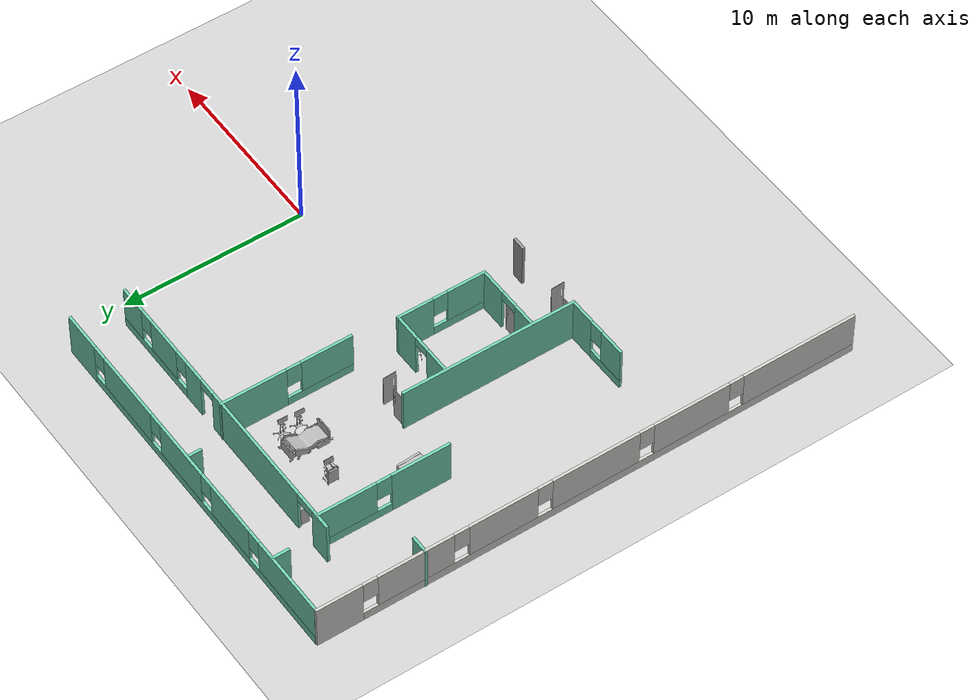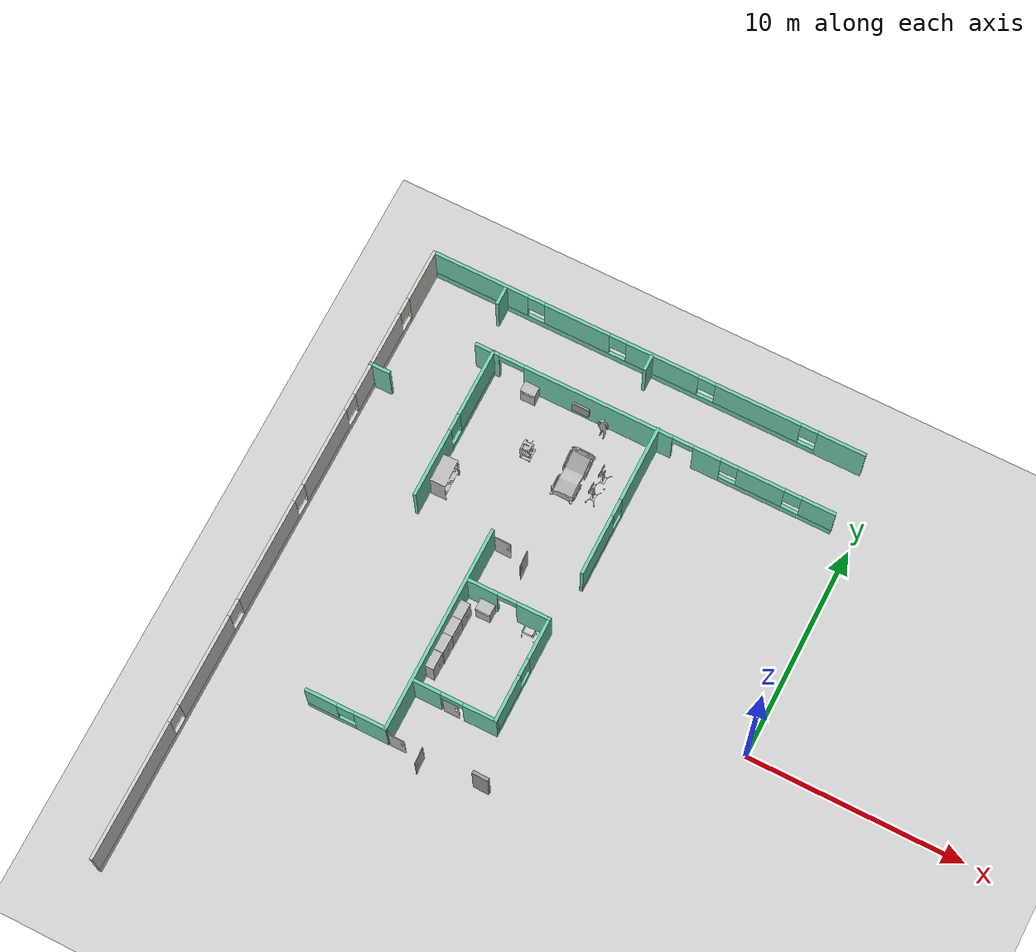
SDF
<sdf version="1.6">
 <world name="default">
  <model name="ground_plane">
   <static>1</static>
   <link name="link">
    <collision name="collision">
     <geometry><plane><normal>0 0 1</normal><size>100 100</size></plane></geometry>
     <surface><friction><ode><mu>100</mu><mu2>50</mu2></ode></friction></surface>
    </collision>
    <visual name="visual">
     <cast_shadows>0</cast_shadows>
     <geometry><plane><normal>0 0 1</normal><size>100 100</size></plane></geometry>
     <material>
      <script><uri>file://media/materials/scripts/gazebo.material</uri><name>Gazebo/Grey</name></script>
     </material>
    </visual>
   </link>
  </model>
  <model name="Hospital_empty">
   <pose>0.7078 0.61575 0 0 -0 0</pose>
   <link name="Wall_0">
    <pose>-22.2855 -2.07101 0 0 0 -1.57157</pose>
    <visual name="Wall_0_Visual_0">
     <pose>-13.6979 0 1.25 0 -0 0</pose>
     <geometry><box><size>2.48559 0.15 2.5</size></box></geometry>
     <material>
      <script><uri>file://media/materials/scripts/gazebo.material</uri><name>Gazebo/CeilingTiled</name></script>
      <ambient>0.435294 0.796078 0.67451 1</ambient>
     </material>
    </visual>
    <collision name="Wall_0_Collision_0">
     <geometry><box><size>2.48559 0.15 2.5</size></box></geometry>
     <pose>-13.6979 0 1.25 0 -0 0</pose>
    </collision>
    <visual name="Wall_0_Visual_1">
     <pose>1.2428 0 0.25 0 -0 0</pose>
     <geometry><box><size>27.3959 0.15 0.5</size></box></geometry>
     <material>
      <script><uri>file://media/materials/scripts/gazebo.material</uri><name>Gazebo/CeilingTiled</name></script>
      <ambient>0.435294 0.796078 0.67451 1</ambient>
     </material>
    </visual>
    <collision name="Wall_0_Collision_1">
     <geometry><box><size>27.3959 0.15 0.5</size></box></geometry>
     <pose>1.2428 0 0.25 0 -0 0</pose>
    </collision>
    <visual name="Wall_0_Visual_2">
     <pose>-9.59967 0 1.5 0 -0 0</pose>
     <geometry><box><size>4.11095 0.15 2</size></box></geometry>
     <material>
      <script><uri>file://media/materials/scripts/gazebo.material</uri><name>Gazebo/CeilingTiled</name></script>
      <ambient>0.435294 0.796078 0.67451 1</ambient>
     </material>
    </visual>
    <collision name="Wall_0_Collision_2">
     <geometry><box><size>4.11095 0.15 2</size></box></geometry>
     <pose>-9.59967 0 1.5 0 -0 0</pose>
    </collision>
    <visual name="Wall_0_Visual_3">
     <pose>-4.86411 0 1.5 0 -0 0</pose>
     <geometry><box><size>3.76016 0.15 2</size></box></geometry>
     <material>
      <script><uri>file://media/materials/scripts/gazebo.material</uri><name>Gazebo/CeilingTiled</name></script>
      <ambient>0.435294 0.796078 0.67451 1</ambient>
     </material>
    </visual>
    <collision name="Wall_0_Collision_3">
     <geometry><box><size>3.76016 0.15 2</size></box></geometry>
     <pose>-4.86411 0 1.5 0 -0 0</pose>
    </collision>
    <visual name="Wall_0_Visual_4">
     <pose>0.23681 0 1.5 0 -0 0</pose>
     <geometry><box><size>4.84168 0.15 2</size></box></geometry>
     <material>
      <script><uri>file://media/materials/scripts/gazebo.material</uri><name>Gazebo/CeilingTiled</name></script>
      <ambient>0.435294 0.796078 0.67451 1</ambient>
     </material>
    </visual>
    <collision name="Wall_0_Collision_4">
     <geometry><box><size>4.84168 0.15 2</size></box></geometry>
     <pose>0.23681 0 1.5 0 -0 0</pose>
    </collision>
    <visual name="Wall_0_Visual_5">
     <pose>5.5901 0 1.5 0 -0 0</pose>
     <geometry><box><size>4.2649 0.15 2</size></box></geometry>
     <material>
      <script><uri>file://media/materials/scripts/gazebo.material</uri><name>Gazebo/CeilingTiled</name></script>
      <ambient>0.435294 0.796078 0.67451 1</ambient>
     </material>
    </visual>
    <collision name="Wall_0_Collision_5">
     <geometry><box><size>4.2649 0.15 2</size></box></geometry>
     <pose>5.5901 0 1.5 0 -0 0</pose>
    </collision>
    <visual name="Wall_0_Visual_6">
     <pose>11.7316 0 1.5 0 -0 0</pose>
     <geometry><box><size>6.41818 0.15 2</size></box></geometry>
     <material>
      <script><uri>file://media/materials/scripts/gazebo.material</uri><name>Gazebo/CeilingTiled</name></script>
      <ambient>0.435294 0.796078 0.67451 1</ambient>
     </material>
    </visual>
    <collision name="Wall_0_Collision_6">
     <geometry><box><size>6.41818 0.15 2</size></box></geometry>
     <pose>11.7316 0 1.5 0 -0 0</pose>
    </collision>
    <visual name="Wall_0_Visual_7">
     <pose>-12.0551 0 1.9 0 -0 0</pose>
     <geometry><box><size>0.8 0.15 1.2</size></box></geometry>
     <material>
      <script><uri>file://media/materials/scripts/gazebo.material</uri><name>Gazebo/CeilingTiled</name></script>
      <ambient>0.435294 0.796078 0.67451 1</ambient>
     </material>
    </visual>
    <collision name="Wall_0_Collision_7">
     <geometry><box><size>0.8 0.15 1.2</size></box></geometry>
     <pose>-12.0551 0 1.9 0 -0 0</pose>
    </collision>
    <visual name="Wall_0_Visual_8">
     <pose>-7.14419 0 1.9 0 -0 0</pose>
     <geometry><box><size>0.8 0.15 1.2</size></box></geometry>
     <material>
      <script><uri>file://media/materials/scripts/gazebo.material</uri><name>Gazebo/CeilingTiled</name></script>
      <ambient>0.435294 0.796078 0.67451 1</ambient>
     </material>
    </visual>
    <collision name="Wall_0_Collision_8">
     <geometry><box><size>0.8 0.15 1.2</size></box></geometry>
     <pose>-7.14419 0 1.9 0 -0 0</pose>
    </collision>
    <visual name="Wall_0_Visual_9">
     <pose>-2.58403 0 1.9 0 -0 0</pose>
     <geometry><box><size>0.8 0.15 1.2</size></box></geometry>
     <material>
      <script><uri>file://media/materials/scripts/gazebo.material</uri><name>Gazebo/CeilingTiled</name></script>
      <ambient>0.435294 0.796078 0.67451 1</ambient>
     </material>
    </visual>
    <collision name="Wall_0_Collision_9">
     <geometry><box><size>0.8 0.15 1.2</size></box></geometry>
     <pose>-2.58403 0 1.9 0 -0 0</pose>
    </collision>
    <visual name="Wall_0_Visual_10">
     <pose>3.05765 0 1.9 0 -0 0</pose>
     <geometry><box><size>0.8 0.15 1.2</size></box></geometry>
     <material>
      <script><uri>file://media/materials/scripts/gazebo.material</uri><name>Gazebo/CeilingTiled</name></script>
      <ambient>0.435294 0.796078 0.67451 1</ambient>
     </material>
    </visual>
    <collision name="Wall_0_Collision_10">
     <geometry><box><size>0.8 0.15 1.2</size></box></geometry>
     <pose>3.05765 0 1.9 0 -0 0</pose>
    </collision>
    <visual name="Wall_0_Visual_11">
     <pose>8.12255 0 1.9 0 -0 0</pose>
     <geometry><box><size>0.8 0.15 1.2</size></box></geometry>
     <material>
      <script><uri>file://media/materials/scripts/gazebo.material</uri><name>Gazebo/CeilingTiled</name></script>
      <ambient>0.435294 0.796078 0.67451 1</ambient>
     </material>
    </visual>
    <collision name="Wall_0_Collision_11">
     <geometry><box><size>0.8 0.15 1.2</size></box></geometry>
     <pose>8.12255 0 1.9 0 -0 0</pose>
    </collision>
   </link>
   <link name="Wall_11">
    <collision name="Wall_11_Collision">
     <geometry><box><size>0.75 0.15 2.5</size></box></geometry>
     <pose>0 0 1.25 0 -0 0</pose>
    </collision>
    <visual name="Wall_11_Visual">
     <pose>0 0 1.25 0 -0 0</pose>
     <geometry><box><size>0.75 0.15 2.5</size></box></geometry>
     <material>
      <script><uri>file://media/materials/scripts/gazebo.material</uri><name>Gazebo/Grey</name></script>
      <ambient>0.435294 0.796078 0.67451 1</ambient>
     </material>
    </visual>
    <pose>-11.779 12.417 0 0 0 -1.5708</pose>
   </link>
   <link name="Wall_15">
    <pose>-10.243 9.85799 0 0 -0 0</pose>
    <visual name="Wall_15_Visual_0">
     <pose>-7.92165 0 1.25 0 -0 0</pose>
     <geometry><box><size>1.1567 0.15 2.5</size></box></geometry>
     <material>
      <script><uri>file://media/materials/scripts/gazebo.material</uri><name>Gazebo/Grey</name></script>
      <ambient>0.435294 0.796078 0.67451 1</ambient>
     </material>
    </visual>
    <collision name="Wall_15_Collision_0">
     <geometry><box><size>1.1567 0.15 2.5</size></box></geometry>
     <pose>-7.92165 0 1.25 0 -0 0</pose>
    </collision>
    <visual name="Wall_15_Visual_1">
     <pose>-2.63446 0 1.25 0 -0 0</pose>
     <geometry><box><size>7.0372 0.15 2.5</size></box></geometry>
     <material>
      <script><uri>file://media/materials/scripts/gazebo.material</uri><name>Gazebo/Grey</name></script>
      <ambient>0.435294 0.796078 0.67451 1</ambient>
     </material>
    </visual>
    <collision name="Wall_15_Collision_1">
     <geometry><box><size>7.0372 0.15 2.5</size></box></geometry>
     <pose>-2.63446 0 1.25 0 -0 0</pose>
    </collision>
    <visual name="Wall_15_Visual_2">
     <pose>2.50875 0 1.25 0 -0 0</pose>
     <geometry><box><size>1.28668 0.15 2.5</size></box></geometry>
     <material>
      <script><uri>file://media/materials/scripts/gazebo.material</uri><name>Gazebo/Grey</name></script>
      <ambient>0.435294 0.796078 0.67451 1</ambient>
     </material>
    </visual>
    <collision name="Wall_15_Collision_2">
     <geometry><box><size>1.28668 0.15 2.5</size></box></geometry>
     <pose>2.50875 0 1.25 0 -0 0</pose>
    </collision>
    <visual name="Wall_15_Visual_3">
     <pose>5.82605 0 0.25 0 -0 0</pose>
     <geometry><box><size>5.34791 0.15 0.5</size></box></geometry>
     <material>
      <script><uri>file://media/materials/scripts/gazebo.material</uri><name>Gazebo/Grey</name></script>
      <ambient>0.435294 0.796078 0.67451 1</ambient>
     </material>
    </visual>
    <collision name="Wall_15_Collision_3">
     <geometry><box><size>5.34791 0.15 0.5</size></box></geometry>
     <pose>5.82605 0 0.25 0 -0 0</pose>
    </collision>
    <visual name="Wall_15_Visual_4">
     <pose>5.03895 0 1.5 0 -0 0</pose>
     <geometry><box><size>2.17371 0.15 2</size></box></geometry>
     <material>
      <script><uri>file://media/materials/scripts/gazebo.material</uri><name>Gazebo/Grey</name></script>
      <ambient>0.435294 0.796078 0.67451 1</ambient>
     </material>
    </visual>
    <collision name="Wall_15_Collision_4">
     <geometry><box><size>2.17371 0.15 2</size></box></geometry>
     <pose>5.03895 0 1.5 0 -0 0</pose>
    </collision>
    <visual name="Wall_15_Visual_5">
     <pose>7.7129 0 1.5 0 -0 0</pose>
     <geometry><box><size>1.5742 0.15 2</size></box></geometry>
     <material>
      <script><uri>file://media/materials/scripts/gazebo.material</uri><name>Gazebo/Grey</name></script>
      <ambient>0.435294 0.796078 0.67451 1</ambient>
     </material>
    </visual>
    <collision name="Wall_15_Collision_5">
     <geometry><box><size>1.5742 0.15 2</size></box></geometry>
     <pose>7.7129 0 1.5 0 -0 0</pose>
    </collision>
    <visual name="Wall_15_Visual_6">
     <pose>3.55209 0 1.9 0 -0 0</pose>
     <geometry><box><size>0.8 0.15 1.2</size></box></geometry>
     <material>
      <script><uri>file://media/materials/scripts/gazebo.material</uri><name>Gazebo/Grey</name></script>
      <ambient>0.435294 0.796078 0.67451 1</ambient>
     </material>
    </visual>
    <collision name="Wall_15_Collision_6">
     <geometry><box><size>0.8 0.15 1.2</size></box></geometry>
     <pose>3.55209 0 1.9 0 -0 0</pose>
    </collision>
    <visual name="Wall_15_Visual_7">
     <pose>6.5258 0 1.9 0 -0 0</pose>
     <geometry><box><size>0.8 0.15 1.2</size></box></geometry>
     <material>
      <script><uri>file://media/materials/scripts/gazebo.material</uri><name>Gazebo/Grey</name></script>
      <ambient>0.435294 0.796078 0.67451 1</ambient>
     </material>
    </visual>
    <collision name="Wall_15_Collision_7">
     <geometry><box><size>0.8 0.15 1.2</size></box></geometry>
     <pose>6.5258 0 1.9 0 -0 0</pose>
    </collision>
    <visual name="Wall_15_Visual_8">
     <pose>-6.74818 0 2.25 0 -0 0</pose>
     <geometry><box><size>1.19024 0.15 0.5</size></box></geometry>
     <material>
      <script><uri>file://media/materials/scripts/gazebo.material</uri><name>Gazebo/Grey</name></script>
      <ambient>0.435294 0.796078 0.67451 1</ambient>
     </material>
    </visual>
    <collision name="Wall_15_Collision_8">
     <geometry><box><size>1.19024 0.15 0.5</size></box></geometry>
     <pose>-6.74818 0 2.25 0 -0 0</pose>
    </collision>
    <visual name="Wall_15_Visual_9">
     <pose>1.37478 0 2.25 0 -0 0</pose>
     <geometry><box><size>0.981268 0.15 0.5</size></box></geometry>
     <material>
      <script><uri>file://media/materials/scripts/gazebo.material</uri><name>Gazebo/Grey</name></script>
      <ambient>0.435294 0.796078 0.67451 1</ambient>
     </material>
    </visual>
    <collision name="Wall_15_Collision_9">
     <geometry><box><size>0.981268 0.15 0.5</size></box></geometry>
     <pose>1.37478 0 2.25 0 -0 0</pose>
    </collision>
   </link>
   <link name="Wall_19">
    <pose>-17.897 6.26299 0 0 -0 1.5708</pose>
    <visual name="Wall_19_Visual_0">
     <pose>-2.00631 0 1.25 0 -0 0</pose>
     <geometry><box><size>3.23738 0.15 2.5</size></box></geometry>
     <material>
      <script><uri>file://media/materials/scripts/gazebo.material</uri><name>Gazebo/Grey</name></script>
      <ambient>0.435294 0.796078 0.67451 1</ambient>
     </material>
    </visual>
    <collision name="Wall_19_Collision_0">
     <geometry><box><size>3.23738 0.15 2.5</size></box></geometry>
     <pose>-2.00631 0 1.25 0 -0 0</pose>
    </collision>
    <visual name="Wall_19_Visual_1">
     <pose>1.61869 0 0.25 0 -0 0</pose>
     <geometry><box><size>4.01262 0.15 0.5</size></box></geometry>
     <material>
      <script><uri>file://media/materials/scripts/gazebo.material</uri><name>Gazebo/Grey</name></script>
      <ambient>0.435294 0.796078 0.67451 1</ambient>
     </material>
    </visual>
    <collision name="Wall_19_Collision_1">
     <geometry><box><size>4.01262 0.15 0.5</size></box></geometry>
     <pose>1.61869 0 0.25 0 -0 0</pose>
    </collision>
    <visual name="Wall_19_Visual_2">
     <pose>2.01869 0 1.5 0 -0 0</pose>
     <geometry><box><size>3.21262 0.15 2</size></box></geometry>
     <material>
      <script><uri>file://media/materials/scripts/gazebo.material</uri><name>Gazebo/Grey</name></script>
      <ambient>0.435294 0.796078 0.67451 1</ambient>
     </material>
    </visual>
    <collision name="Wall_19_Collision_2">
     <geometry><box><size>3.21262 0.15 2</size></box></geometry>
     <pose>2.01869 0 1.5 0 -0 0</pose>
    </collision>
    <visual name="Wall_19_Visual_3">
     <pose>0.012383 0 1.9 0 -0 0</pose>
     <geometry><box><size>0.8 0.15 1.2</size></box></geometry>
     <material>
      <script><uri>file://media/materials/scripts/gazebo.material</uri><name>Gazebo/Grey</name></script>
      <ambient>0.435294 0.796078 0.67451 1</ambient>
     </material>
    </visual>
    <collision name="Wall_19_Collision_3">
     <geometry><box><size>0.8 0.15 1.2</size></box></geometry>
     <pose>0.012383 0 1.9 0 -0 0</pose>
    </collision>
   </link>
   <link name="Wall_21">
    <pose>-10.075 6.33799 0 0 0 -1.5708</pose>
    <visual name="Wall_21_Visual_0">
     <pose>-1.82469 0 1.25 0 -0 0</pose>
     <geometry><box><size>3.60062 0.15 2.5</size></box></geometry>
     <material>
      <script><uri>file://media/materials/scripts/gazebo.material</uri><name>Gazebo/Grey</name></script>
      <ambient>0.435294 0.796078 0.67451 1</ambient>
     </material>
    </visual>
    <collision name="Wall_21_Collision_0">
     <geometry><box><size>3.60062 0.15 2.5</size></box></geometry>
     <pose>-1.82469 0 1.25 0 -0 0</pose>
    </collision>
    <visual name="Wall_21_Visual_1">
     <pose>1.80031 0 0.25 0 -0 0</pose>
     <geometry><box><size>3.64938 0.15 0.5</size></box></geometry>
     <material>
      <script><uri>file://media/materials/scripts/gazebo.material</uri><name>Gazebo/Grey</name></script>
      <ambient>0.435294 0.796078 0.67451 1</ambient>
     </material>
    </visual>
    <collision name="Wall_21_Collision_1">
     <geometry><box><size>3.64938 0.15 0.5</size></box></geometry>
     <pose>1.80031 0 0.25 0 -0 0</pose>
    </collision>
    <visual name="Wall_21_Visual_2">
     <pose>2.20031 0 1.5 0 -0 0</pose>
     <geometry><box><size>2.84938 0.15 2</size></box></geometry>
     <material>
      <script><uri>file://media/materials/scripts/gazebo.material</uri><name>Gazebo/Grey</name></script>
      <ambient>0.435294 0.796078 0.67451 1</ambient>
     </material>
    </visual>
    <collision name="Wall_21_Collision_2">
     <geometry><box><size>2.84938 0.15 2</size></box></geometry>
     <pose>2.20031 0 1.5 0 -0 0</pose>
    </collision>
    <visual name="Wall_21_Visual_3">
     <pose>0.375624 0 1.9 0 -0 0</pose>
     <geometry><box><size>0.8 0.15 1.2</size></box></geometry>
     <material>
      <script><uri>file://media/materials/scripts/gazebo.material</uri><name>Gazebo/Grey</name></script>
      <ambient>0.435294 0.796078 0.67451 1</ambient>
     </material>
    </visual>
    <collision name="Wall_21_Collision_3">
     <geometry><box><size>0.8 0.15 1.2</size></box></geometry>
     <pose>0.375624 0 1.9 0 -0 0</pose>
    </collision>
   </link>
   <link name="Wall_25">
    <collision name="Wall_25_Collision">
     <geometry><box><size>9.67974 0.15 2.5</size></box></geometry>
     <pose>0 0 1.25 0 -0 0</pose>
    </collision>
    <visual name="Wall_25_Visual">
     <pose>0 0 1.25 0 -0 0</pose>
     <geometry><box><size>9.67974 0.15 2.5</size></box></geometry>
     <material>
      <script><uri>file://media/materials/scripts/gazebo.material</uri><name>Gazebo/Grey</name></script>
      <ambient>0.435294 0.796078 0.67451 1</ambient>
     </material>
    </visual>
    <pose>-14.252 -2.06201 0 0 0 -1.57038</pose>
   </link>
   <link name="Wall_26">
    <pose>-16.0778 -6.83628 0 0 0 -3.13652</pose>
    <visual name="Wall_26_Visual_0">
     <pose>-1.13589 0 1.25 0 -0 0</pose>
     <geometry><box><size>1.53388 0.15 2.5</size></box></geometry>
     <material>
      <script><uri>file://media/materials/scripts/gazebo.material</uri><name>Gazebo/Grey</name></script>
      <ambient>0.435294 0.796078 0.67451 1</ambient>
     </material>
    </visual>
    <collision name="Wall_26_Collision_0">
     <geometry><box><size>1.53388 0.15 2.5</size></box></geometry>
     <pose>-1.13589 0 1.25 0 -0 0</pose>
    </collision>
    <visual name="Wall_26_Visual_1">
     <pose>0.766942 0 0.25 0 -0 0</pose>
     <geometry><box><size>2.27178 0.15 0.5</size></box></geometry>
     <material>
      <script><uri>file://media/materials/scripts/gazebo.material</uri><name>Gazebo/Grey</name></script>
      <ambient>0.435294 0.796078 0.67451 1</ambient>
     </material>
    </visual>
    <collision name="Wall_26_Collision_1">
     <geometry><box><size>2.27178 0.15 0.5</size></box></geometry>
     <pose>0.766942 0 0.25 0 -0 0</pose>
    </collision>
    <visual name="Wall_26_Visual_2">
     <pose>1.16694 0 1.5 0 -0 0</pose>
     <geometry><box><size>1.47178 0.15 2</size></box></geometry>
     <material>
      <script><uri>file://media/materials/scripts/gazebo.material</uri><name>Gazebo/Grey</name></script>
      <ambient>0.435294 0.796078 0.67451 1</ambient>
     </material>
    </visual>
    <collision name="Wall_26_Collision_2">
     <geometry><box><size>1.47178 0.15 2</size></box></geometry>
     <pose>1.16694 0 1.5 0 -0 0</pose>
    </collision>
    <visual name="Wall_26_Visual_3">
     <pose>0.031054 0 1.9 0 -0 0</pose>
     <geometry><box><size>0.8 0.15 1.2</size></box></geometry>
     <material>
      <script><uri>file://media/materials/scripts/gazebo.material</uri><name>Gazebo/Grey</name></script>
      <ambient>0.435294 0.796078 0.67451 1</ambient>
     </material>
    </visual>
    <collision name="Wall_26_Collision_3">
     <geometry><box><size>0.8 0.15 1.2</size></box></geometry>
     <pose>0.031054 0 1.9 0 -0 0</pose>
    </collision>
   </link>
   <link name="Wall_34">
    <collision name="Wall_34_Collision">
     <geometry><box><size>0.75 0.15 2.5</size></box></geometry>
     <pose>0 0 1.25 0 -0 0</pose>
    </collision>
    <visual name="Wall_34_Visual">
     <pose>0 0 1.25 0 -0 0</pose>
     <geometry><box><size>0.75 0.15 2.5</size></box></geometry>
     <material>
      <script><uri>file://media/materials/scripts/gazebo.material</uri><name>Gazebo/Grey</name></script>
      <ambient>1 1 1 1</ambient>
     </material>
    </visual>
    <pose>-9.874 -6.83101 0 0 0 -0.033321</pose>
   </link>
   <link name="Wall_5">
    <pose>-11.972 12.813 0 0 -0 3.14159</pose>
    <visual name="Wall_5_Visual_0">
     <pose>-9.13138 0 1.25 0 -0 0</pose>
     <geometry><box><size>2.23723 0.15 2.5</size></box></geometry>
     <material>
      <script><uri>file://media/materials/scripts/gazebo.material</uri><name>Gazebo/Grey</name></script>
      <ambient>0.435294 0.796078 0.67451 1</ambient>
     </material>
    </visual>
    <collision name="Wall_5_Collision_0">
     <geometry><box><size>2.23723 0.15 2.5</size></box></geometry>
     <pose>-9.13138 0 1.25 0 -0 0</pose>
    </collision>
    <visual name="Wall_5_Visual_1">
     <pose>1.11862 0 0.25 0 -0 0</pose>
     <geometry><box><size>18.2628 0.15 0.5</size></box></geometry>
     <material>
      <script><uri>file://media/materials/scripts/gazebo.material</uri><name>Gazebo/Grey</name></script>
      <ambient>0.435294 0.796078 0.67451 1</ambient>
     </material>
    </visual>
    <collision name="Wall_5_Collision_1">
     <geometry><box><size>18.2628 0.15 0.5</size></box></geometry>
     <pose>1.11862 0 0.25 0 -0 0</pose>
    </collision>
    <visual name="Wall_5_Visual_2">
     <pose>-5.20625 0 1.5 0 -0 0</pose>
     <geometry><box><size>4.01304 0.15 2</size></box></geometry>
     <material>
      <script><uri>file://media/materials/scripts/gazebo.material</uri><name>Gazebo/Grey</name></script>
      <ambient>0.435294 0.796078 0.67451 1</ambient>
     </material>
    </visual>
    <collision name="Wall_5_Collision_2">
     <geometry><box><size>4.01304 0.15 2</size></box></geometry>
     <pose>-5.20625 0 1.5 0 -0 0</pose>
    </collision>
    <visual name="Wall_5_Visual_3">
     <pose>-0.68668 0 1.5 0 -0 0</pose>
     <geometry><box><size>3.42609 0.15 2</size></box></geometry>
     <material>
      <script><uri>file://media/materials/scripts/gazebo.material</uri><name>Gazebo/Grey</name></script>
      <ambient>0.435294 0.796078 0.67451 1</ambient>
     </material>
    </visual>
    <collision name="Wall_5_Collision_3">
     <geometry><box><size>3.42609 0.15 2</size></box></geometry>
     <pose>-0.68668 0 1.5 0 -0 0</pose>
    </collision>
    <visual name="Wall_5_Visual_4">
     <pose>3.38289 0 1.5 0 -0 0</pose>
     <geometry><box><size>3.11304 0.15 2</size></box></geometry>
     <material>
      <script><uri>file://media/materials/scripts/gazebo.material</uri><name>Gazebo/Grey</name></script>
      <ambient>0.435294 0.796078 0.67451 1</ambient>
     </material>
    </visual>
    <collision name="Wall_5_Collision_4">
     <geometry><box><size>3.11304 0.15 2</size></box></geometry>
     <pose>3.38289 0 1.5 0 -0 0</pose>
    </collision>
    <visual name="Wall_5_Visual_5">
     <pose>7.9947 0 1.5 0 -0 0</pose>
     <geometry><box><size>4.51059 0.15 2</size></box></geometry>
     <material>
      <script><uri>file://media/materials/scripts/gazebo.material</uri><name>Gazebo/Grey</name></script>
      <ambient>0.435294 0.796078 0.67451 1</ambient>
     </material>
    </visual>
    <collision name="Wall_5_Collision_5">
     <geometry><box><size>4.51059 0.15 2</size></box></geometry>
     <pose>7.9947 0 1.5 0 -0 0</pose>
    </collision>
    <visual name="Wall_5_Visual_6">
     <pose>-7.61277 0 1.9 0 -0 0</pose>
     <geometry><box><size>0.8 0.15 1.2</size></box></geometry>
     <material>
      <script><uri>file://media/materials/scripts/gazebo.material</uri><name>Gazebo/Grey</name></script>
      <ambient>0.435294 0.796078 0.67451 1</ambient>
     </material>
    </visual>
    <collision name="Wall_5_Collision_6">
     <geometry><box><size>0.8 0.15 1.2</size></box></geometry>
     <pose>-7.61277 0 1.9 0 -0 0</pose>
    </collision>
    <visual name="Wall_5_Visual_7">
     <pose>-2.79972 0 1.9 0 -0 0</pose>
     <geometry><box><size>0.8 0.15 1.2</size></box></geometry>
     <material>
      <script><uri>file://media/materials/scripts/gazebo.material</uri><name>Gazebo/Grey</name></script>
      <ambient>0.435294 0.796078 0.67451 1</ambient>
     </material>
    </visual>
    <collision name="Wall_5_Collision_7">
     <geometry><box><size>0.8 0.15 1.2</size></box></geometry>
     <pose>-2.79972 0 1.9 0 -0 0</pose>
    </collision>
    <visual name="Wall_5_Visual_8">
     <pose>1.42636 0 1.9 0 -0 0</pose>
     <geometry><box><size>0.8 0.15 1.2</size></box></geometry>
     <material>
      <script><uri>file://media/materials/scripts/gazebo.material</uri><name>Gazebo/Grey</name></script>
      <ambient>0.435294 0.796078 0.67451 1</ambient>
     </material>
    </visual>
    <collision name="Wall_5_Collision_8">
     <geometry><box><size>0.8 0.15 1.2</size></box></geometry>
     <pose>1.42636 0 1.9 0 -0 0</pose>
    </collision>
    <visual name="Wall_5_Visual_9">
     <pose>5.33941 0 1.9 0 -0 0</pose>
     <geometry><box><size>0.8 0.15 1.2</size></box></geometry>
     <material>
      <script><uri>file://media/materials/scripts/gazebo.material</uri><name>Gazebo/Grey</name></script>
      <ambient>0.435294 0.796078 0.67451 1</ambient>
     </material>
    </visual>
    <collision name="Wall_5_Collision_9">
     <geometry><box><size>0.8 0.15 1.2</size></box></geometry>
     <pose>5.33941 0 1.9 0 -0 0</pose>
    </collision>
   </link>
   <link name="Wall_7">
    <collision name="Wall_7_Collision">
     <geometry><box><size>1 0.15 2.5</size></box></geometry>
     <pose>0 0 1.25 0 -0 0</pose>
    </collision>
    <visual name="Wall_7_Visual">
     <pose>0 0 1.25 0 -0 0</pose>
     <geometry><box><size>1 0.15 2.5</size></box></geometry>
     <material>
      <script><uri>file://media/materials/scripts/gazebo.material</uri><name>Gazebo/Grey</name></script>
      <ambient>0.435294 0.796078 0.67451 1</ambient>
     </material>
    </visual>
    <pose>-21.878 7.02899 0 0 -0 0</pose>
   </link>
   <link name="Wall_82">
    <pose>-12.316 0.362988 0 0 -0 0</pose>
    <visual name="Wall_82_Visual_0">
     <pose>-1.23906 0 1.25 0 -0 0</pose>
     <geometry><box><size>1.52188 0.15 2.5</size></box></geometry>
     <material>
      <script><uri>file://media/materials/scripts/gazebo.material</uri><name>Gazebo/Grey</name></script>
      <ambient>0.435294 0.796078 0.67451 1</ambient>
     </material>
    </visual>
    <collision name="Wall_82_Collision_0">
     <geometry><box><size>1.52188 0.15 2.5</size></box></geometry>
     <pose>-1.23906 0 1.25 0 -0 0</pose>
    </collision>
    <visual name="Wall_82_Visual_1">
     <pose>1.21094 0 1.25 0 -0 0</pose>
     <geometry><box><size>1.57812 0.15 2.5</size></box></geometry>
     <material>
      <script><uri>file://media/materials/scripts/gazebo.material</uri><name>Gazebo/Grey</name></script>
      <ambient>0.435294 0.796078 0.67451 1</ambient>
     </material>
    </visual>
    <collision name="Wall_82_Collision_1">
     <geometry><box><size>1.57812 0.15 2.5</size></box></geometry>
     <pose>1.21094 0 1.25 0 -0 0</pose>
    </collision>
    <visual name="Wall_82_Visual_2">
     <pose>-0.028121 0 2.25 0 -0 0</pose>
     <geometry><box><size>0.9 0.15 0.5</size></box></geometry>
     <material>
      <script><uri>file://media/materials/scripts/gazebo.material</uri><name>Gazebo/Grey</name></script>
      <ambient>0.435294 0.796078 0.67451 1</ambient>
     </material>
    </visual>
    <collision name="Wall_82_Collision_2">
     <geometry><box><size>0.9 0.15 0.5</size></box></geometry>
     <pose>-0.028121 0 2.25 0 -0 0</pose>
    </collision>
   </link>
   <link name="Wall_83">
    <pose>-10.391 -2.06201 0 0 0 -1.5708</pose>
    <visual name="Wall_83_Visual_0">
     <pose>-1.49702 0 1.25 0 -0 0</pose>
     <geometry><box><size>2.00596 0.15 2.5</size></box></geometry>
     <material>
      <script><uri>file://media/materials/scripts/gazebo.material</uri><name>Gazebo/Grey</name></script>
      <ambient>0.435294 0.796078 0.67451 1</ambient>
     </material>
    </visual>
    <collision name="Wall_83_Collision_0">
     <geometry><box><size>2.00596 0.15 2.5</size></box></geometry>
     <pose>-1.49702 0 1.25 0 -0 0</pose>
    </collision>
    <visual name="Wall_83_Visual_1">
     <pose>1.00298 0 0.25 0 -0 0</pose>
     <geometry><box><size>2.99404 0.15 0.5</size></box></geometry>
     <material>
      <script><uri>file://media/materials/scripts/gazebo.material</uri><name>Gazebo/Grey</name></script>
      <ambient>0.435294 0.796078 0.67451 1</ambient>
     </material>
    </visual>
    <collision name="Wall_83_Collision_1">
     <geometry><box><size>2.99404 0.15 0.5</size></box></geometry>
     <pose>1.00298 0 0.25 0 -0 0</pose>
    </collision>
    <visual name="Wall_83_Visual_2">
     <pose>1.40298 0 1.5 0 -0 0</pose>
     <geometry><box><size>2.19404 0.15 2</size></box></geometry>
     <material>
      <script><uri>file://media/materials/scripts/gazebo.material</uri><name>Gazebo/Grey</name></script>
      <ambient>0.435294 0.796078 0.67451 1</ambient>
     </material>
    </visual>
    <collision name="Wall_83_Collision_2">
     <geometry><box><size>2.19404 0.15 2</size></box></geometry>
     <pose>1.40298 0 1.5 0 -0 0</pose>
    </collision>
    <visual name="Wall_83_Visual_3">
     <pose>-0.094038 0 1.9 0 -0 0</pose>
     <geometry><box><size>0.8 0.15 1.2</size></box></geometry>
     <material>
      <script><uri>file://media/materials/scripts/gazebo.material</uri><name>Gazebo/Grey</name></script>
      <ambient>0.435294 0.796078 0.67451 1</ambient>
     </material>
    </visual>
    <collision name="Wall_83_Collision_3">
     <geometry><box><size>0.8 0.15 1.2</size></box></geometry>
     <pose>-0.094038 0 1.9 0 -0 0</pose>
    </collision>
   </link>
   <link name="Wall_84">
    <pose>-12.316 -4.48701 0 0 -0 3.14159</pose>
    <visual name="Wall_84_Visual_0">
     <pose>-1.21258 0 1.25 0 -0 0</pose>
     <geometry><box><size>1.57484 0.15 2.5</size></box></geometry>
     <material>
      <script><uri>file://media/materials/scripts/gazebo.material</uri><name>Gazebo/Grey</name></script>
      <ambient>0.435294 0.796078 0.67451 1</ambient>
     </material>
    </visual>
    <collision name="Wall_84_Collision_0">
     <geometry><box><size>1.57484 0.15 2.5</size></box></geometry>
     <pose>-1.21258 0 1.25 0 -0 0</pose>
    </collision>
    <visual name="Wall_84_Visual_1">
     <pose>1.30305 0 1.25 0 -0 0</pose>
     <geometry><box><size>1.3939 0.15 2.5</size></box></geometry>
     <material>
      <script><uri>file://media/materials/scripts/gazebo.material</uri><name>Gazebo/Grey</name></script>
      <ambient>0.435294 0.796078 0.67451 1</ambient>
     </material>
    </visual>
    <collision name="Wall_84_Collision_1">
     <geometry><box><size>1.3939 0.15 2.5</size></box></geometry>
     <pose>1.30305 0 1.25 0 -0 0</pose>
    </collision>
    <visual name="Wall_84_Visual_2">
     <pose>0.090471 0 2.25 0 -0 0</pose>
     <geometry><box><size>1.03126 0.15 0.5</size></box></geometry>
     <material>
      <script><uri>file://media/materials/scripts/gazebo.material</uri><name>Gazebo/Grey</name></script>
      <ambient>0.435294 0.796078 0.67451 1</ambient>
     </material>
    </visual>
    <collision name="Wall_84_Collision_2">
     <geometry><box><size>1.03126 0.15 0.5</size></box></geometry>
     <pose>0.090471 0 2.25 0 -0 0</pose>
    </collision>
   </link>
   <link name="Wall_9">
    <collision name="Wall_9_Collision">
     <geometry><box><size>0.925591 0.15 2.5</size></box></geometry>
     <pose>0 0 1.25 0 -0 0</pose>
    </collision>
    <visual name="Wall_9_Visual">
     <pose>0 0 1.25 0 -0 0</pose>
     <geometry><box><size>0.925591 0.15 2.5</size></box></geometry>
     <material>
      <script><uri>file://media/materials/scripts/gazebo.material</uri><name>Gazebo/Grey</name></script>
      <ambient>0.435294 0.796078 0.67451 1</ambient>
     </material>
    </visual>
    <pose>-18.768 12.3545 0 0 0 -1.56564</pose>
   </link>
   <link name="Window_33">
    <collision name="Window_33_Collision">
     <geometry><box><size>0.8 0.17 0.8</size></box></geometry>
     <pose>0 0 0.4 0 -0 0</pose>
    </collision>
    <visual name="Window_33_Visual">
     <pose>0 0 0.4 0 -0 0</pose>
     <geometry><box><size>0.8 0.17 0.8</size></box></geometry>
     <material>
      <script><uri>file://media/materials/scripts/gazebo.material</uri><name>Gazebo/Grey</name></script>
     </material>
    </visual>
    <pose>-13.6283 9.77108 0.5 0 -0 0</pose>
   </link>
   <static>1</static>
  </model>
  <model name="OpScrubs_4">
   <static>1</static>
   <link name="body">
    <visual name="visual">
     <geometry><mesh><uri>model://OpScrubs/meshes/OpScrubs.obj</uri></mesh></geometry>
    </visual>
    <collision name="collision">
     <geometry><mesh><uri>model://OpScrubs/meshes/OpScrubs_Col.obj</uri></mesh></geometry>
    </collision>
   </link>
   <pose>-11.7205 10.0589 0 0 -0 0</pose>
  </model>
  <model name="InstrumentCart2_clone">
   <static>1</static>
   <link name="body">
    <visual name="visual">
     <geometry><mesh><uri>model://InstrumentCart2/meshes/InstrumentCart2.obj</uri></mesh></geometry>
    </visual>
    <collision name="collision">
     <geometry><mesh><uri>model://InstrumentCart2/meshes/InstrumentCart2.obj</uri></mesh></geometry>
    </collision>
   </link>
   <pose>-10.7873 8.17408 0 0 0 -1.59543</pose>
  </model>
  <model name="InstrumentCart2_clone_0">
   <static>1</static>
   <link name="body">
    <visual name="visual">
     <geometry><mesh><uri>model://InstrumentCart2/meshes/InstrumentCart2.obj</uri></mesh></geometry>
    </visual>
    <collision name="collision">
     <geometry><mesh><uri>model://InstrumentCart2/meshes/InstrumentCart2.obj</uri></mesh></geometry>
    </collision>
   </link>
   <pose>-10.8428 7.29507 0 0 0 -1.59543</pose>
  </model>
  <model name="CGMClassic_clone">
   <static>1</static>
   <link name="body">
    <visual name="visual">
     <geometry>
      <mesh><uri>model://CGMClassic/meshes/CGMClassic.obj</uri><scale>0.01 0.01 0.01</scale></mesh>
     </geometry>
    </visual>
    <collision name="collision">
     <geometry>
      <mesh><uri>model://CGMClassic/meshes/CGMClassic.obj</uri><scale>0.01 0.01 0.01</scale></mesh>
     </geometry>
    </collision>
   </link>
   <pose>-11.9633 7.7296 0 0 -0 0</pose>
  </model>
  <model name="InstrumentCart1_clone_0_clone">
   <static>1</static>
   <link name="body">
    <visual name="visual">
     <geometry><mesh><uri>model://InstrumentCart1/meshes/InstrumentCart1.obj</uri></mesh></geometry>
    </visual>
    <collision name="collision">
     <geometry><mesh><uri>model://InstrumentCart1/meshes/InstrumentCart1.obj</uri></mesh></geometry>
    </collision>
   </link>
   <pose>-14.1905 7.78916 0 0 -0 1.56895</pose>
  </model>
  <model name="MetalCabinet_clone">
   <static>1</static>
   <link name="body">
    <visual name="visual">
     <geometry><mesh><uri>model://MetalCabinet/meshes/MetalCabinet.obj</uri></mesh></geometry>
    </visual>
    <collision name="collision">
     <geometry><mesh><uri>model://MetalCabinet/meshes/MetalCabinet.obj</uri></mesh></geometry>
    </collision>
   </link>
   <pose>-13.2857 -2.54873 0 0 -0 1.55562</pose>
  </model>
  <model name="MetalCabinet_clone_clone">
   <static>1</static>
   <link name="body">
    <visual name="visual">
     <geometry><mesh><uri>model://MetalCabinet/meshes/MetalCabinet.obj</uri></mesh></geometry>
    </visual>
    <collision name="collision">
     <geometry><mesh><uri>model://MetalCabinet/meshes/MetalCabinet.obj</uri></mesh></geometry>
    </collision>
   </link>
   <pose>-13.2551 -1.72937 0 0 -0 1.55562</pose>
  </model>
  <model name="MetalCabinet_clone_clone_0">
   <static>1</static>
   <link name="body">
    <visual name="visual">
     <geometry><mesh><uri>model://MetalCabinet/meshes/MetalCabinet.obj</uri></mesh></geometry>
    </visual>
    <collision name="collision">
     <geometry><mesh><uri>model://MetalCabinet/meshes/MetalCabinet.obj</uri></mesh></geometry>
    </collision>
   </link>
   <pose>-13.2397 -0.920393 0 0 -0 1.55562</pose>
  </model>
  <model name="MetalCabinet_clone_clone_1">
   <static>1</static>
   <link name="body">
    <visual name="visual">
     <geometry><mesh><uri>model://MetalCabinet/meshes/MetalCabinet.obj</uri></mesh></geometry>
    </visual>
    <collision name="collision">
     <geometry><mesh><uri>model://MetalCabinet/meshes/MetalCabinet.obj</uri></mesh></geometry>
    </collision>
   </link>
   <pose>-13.2314 -0.126906 0 0 -0 1.55562</pose>
  </model>
  <model name="Walker_0">
   <static>1</static>
   <link name="body">
    <visual name="visual"><geometry><mesh><uri>model://Walker/meshes/Walker.obj</uri></mesh></geometry></visual>
    <collision name="collision">
     <geometry><mesh><uri>model://Walker/meshes/Walker_Col.obj</uri></mesh></geometry>
    </collision>
   </link>
   <pose>-10.432 0.570418 0 0 -0 0</pose>
  </model>
  <model name="ElectronicsRecycling_2">
   <static>1</static>
   <link name="body">
    <visual name="visual">
     <geometry><mesh><uri>model://ElectronicsRecycling/meshes/bin.obj</uri></mesh></geometry>
    </visual>
    <collision name="collision">
     <geometry><mesh><uri>model://ElectronicsRecycling/meshes/bin.obj</uri></mesh></geometry>
    </collision>
   </link>
   <pose>-12.4979 0.877504 0 0 -0 0</pose>
  </model>
  <model name="ElectronicsRecycling_6">
   <static>1</static>
   <link name="body">
    <visual name="visual">
     <geometry><mesh><uri>model://ElectronicsRecycling/meshes/bin.obj</uri></mesh></geometry>
    </visual>
    <collision name="collision">
     <geometry><mesh><uri>model://ElectronicsRecycling/meshes/bin.obj</uri></mesh></geometry>
    </collision>
   </link>
   <pose>-15.2762 10.4554 0 0 -0 0</pose>
  </model>
  <model name="OrangeDoors_0_clone_8">
   <static>1</static>
   <link name="body">
    <visual name="visual">
     <geometry><mesh><uri>model://OrangeDoors/meshes/door.obj</uri></mesh></geometry>
    </visual>
    <collision name="collision">
     <geometry><mesh><uri>model://OrangeDoors/meshes/door.obj</uri></mesh></geometry>
    </collision>
   </link>
   <pose>-13.0611 -6.25714 0 0 -0 0</pose>
  </model>
  <model name="OrangeDoors_0_clone_10">
   <static>1</static>
   <link name="body">
    <visual name="visual">
     <geometry><mesh><uri>model://OrangeDoors/meshes/door.obj</uri></mesh></geometry>
    </visual>
    <collision name="collision">
     <geometry><mesh><uri>model://OrangeDoors/meshes/door.obj</uri></mesh></geometry>
    </collision>
   </link>
   <pose>-11.7502 -3.9339 0 0 -0 0</pose>
  </model>
  <model name="OrangeDoors_0_clone_11">
   <static>1</static>
   <link name="body">
    <visual name="visual">
     <geometry><mesh><uri>model://OrangeDoors/meshes/door.obj</uri></mesh></geometry>
    </visual>
    <collision name="collision">
     <geometry><mesh><uri>model://OrangeDoors/meshes/door.obj</uri></mesh></geometry>
    </collision>
   </link>
   <pose>-13.0483 3.29132 0 0 -0 0</pose>
  </model>
  <model name="OrangeDoors_0_clone_clone_0">
   <static>1</static>
   <link name="body">
    <visual name="visual">
     <geometry><mesh><uri>model://OrangeDoors/meshes/door.obj</uri></mesh></geometry>
    </visual>
    <collision name="collision">
     <geometry><mesh><uri>model://OrangeDoors/meshes/door.obj</uri></mesh></geometry>
    </collision>
   </link>
   <pose>-11.8932 -6.49487 0 0 0 -1.53252</pose>
  </model>
  <model name="OrangeDoors_0_clone_clone_1">
   <static>1</static>
   <link name="body">
    <visual name="visual">
     <geometry><mesh><uri>model://OrangeDoors/meshes/door.obj</uri></mesh></geometry>
    </visual>
    <collision name="collision">
     <geometry><mesh><uri>model://OrangeDoors/meshes/door.obj</uri></mesh></geometry>
    </collision>
   </link>
   <pose>-11.9083 2.99424 0 0 0 -1.53252</pose>
  </model>
  <model name="StorageRackCoverOpen_4_clone_clone">
   <static>1</static>
   <link name="link">
    <visual name="visual">
     <geometry><mesh><uri>model://StorageRackCoverOpen/meshes/StorageRackCoverOpen.obj</uri></mesh></geometry>
    </visual>
    <collision name="collision">
     <geometry><mesh><uri>model://StorageRackCoverOpen/meshes/StorageRackCoverOpen.obj</uri></mesh></geometry>
    </collision>
   </link>
   <pose>-16.7009 4.99824 0 0 -0 1.58417</pose>
  </model>
 </world>
</sdf>
